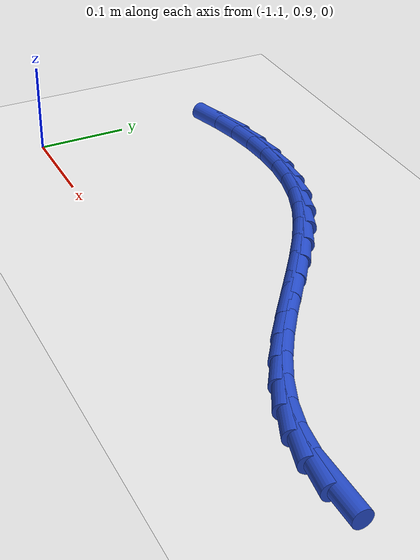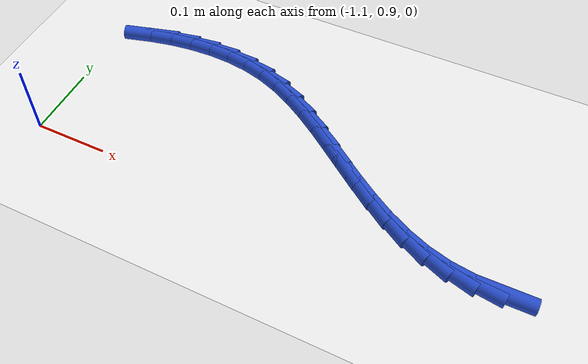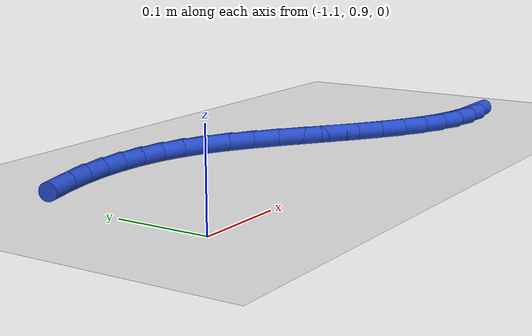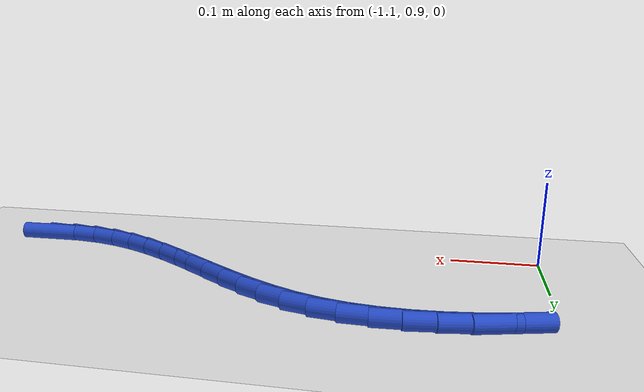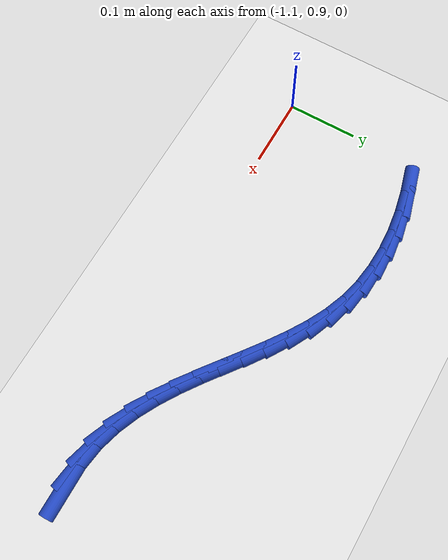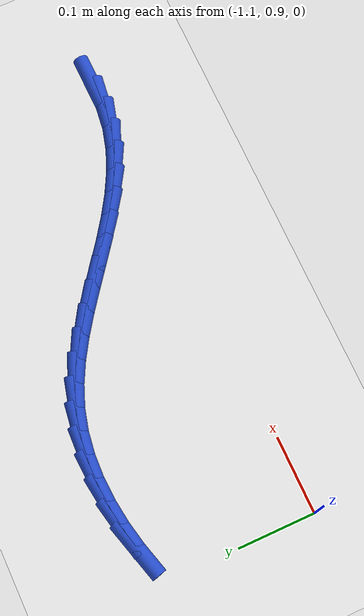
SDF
<sdf version="1.6">
 <world name="default">
  <model name="ground_plane">
   <static>1</static>
   <link name="link">
    <collision name="collision">
     <geometry><plane><normal>0 0 1</normal><size>100 100</size></plane></geometry>
     <surface><friction><ode><mu>100</mu><mu2>50</mu2></ode></friction></surface>
    </collision>
    <visual name="visual">
     <cast_shadows>0</cast_shadows>
     <geometry><plane><normal>0 0 1</normal><size>100 100</size></plane></geometry>
     <material>
      <script><uri>file://media/materials/scripts/gazebo.material</uri><name>Gazebo/WhiteGlow</name></script>
     </material>
    </visual>
   </link>
  </model>
  <model name="line">
   <link name="link_39">
    <pose>-0.48621311271935697 0.918553330267661 0.01 0 1.57 0.01132102907444683</pose>
    <collision name="collision">
     <geometry><cylinder><radius>0.01</radius><length>0.08</length></cylinder></geometry>
    </collision>
    <visual name="visual">
     <material>
      <script><name>Gazebo/Blue</name><uri>file://media/materials/scripts/gazebo.material</uri></script>
     </material>
     <geometry><cylinder><radius>0.01</radius><length>0.08</length></cylinder></geometry>
    </visual>
   </link>
   <link name="link_40">
    <pose>-0.518943744233631 0.9181827700054892 0.01 0 1.57 -0.1347020902670538</pose>
    <collision name="collision">
     <geometry><cylinder><radius>0.01</radius><length>0.08</length></cylinder></geometry>
    </collision>
    <visual name="visual">
     <material>
      <script><name>Gazebo/Blue</name><uri>file://media/materials/scripts/gazebo.material</uri></script>
     </material>
     <geometry><cylinder><radius>0.01</radius><length>0.08</length></cylinder></geometry>
    </visual>
   </link>
   <link name="link_41">
    <pose>-0.5499725529725472 0.9223878796382923 0.01 0 1.57 -0.2723756701730962</pose>
    <collision name="collision">
     <geometry><cylinder><radius>0.01</radius><length>0.08</length></cylinder></geometry>
    </collision>
    <visual name="visual">
     <material>
      <script><name>Gazebo/Blue</name><uri>file://media/materials/scripts/gazebo.material</uri></script>
     </material>
     <geometry><cylinder><radius>0.01</radius><length>0.08</length></cylinder></geometry>
    </visual>
   </link>
   <link name="link_42">
    <pose>-0.579477787620839 0.9306292067836939 0.01 0 1.57 -0.3915296969777729</pose>
    <collision name="collision">
     <geometry><cylinder><radius>0.01</radius><length>0.08</length></cylinder></geometry>
    </collision>
    <visual name="visual">
     <material>
      <script><name>Gazebo/Blue</name><uri>file://media/materials/scripts/gazebo.material</uri></script>
     </material>
     <geometry><cylinder><radius>0.01</radius><length>0.08</length></cylinder></geometry>
    </visual>
   </link>
   <link name="link_43">
    <pose>-0.6076870788718 0.9422752492210549 0.01 0 1.57 -0.4883514980227821</pose>
    <collision name="collision">
     <geometry><cylinder><radius>0.01</radius><length>0.08</length></cylinder></geometry>
    </collision>
    <visual name="visual">
     <material>
      <script><name>Gazebo/Blue</name><uri>file://media/materials/scripts/gazebo.material</uri></script>
     </material>
     <geometry><cylinder><radius>0.01</radius><length>0.08</length></cylinder></geometry>
    </visual>
   </link>
   <link name="link_44">
    <pose>-0.6348280574187213 0.9566945047297342 0.01 0 1.57 -0.5619629587354771</pose>
    <collision name="collision">
     <geometry><cylinder><radius>0.01</radius><length>0.08</length></cylinder></geometry>
    </collision>
    <visual name="visual">
     <material>
      <script><name>Gazebo/Blue</name><uri>file://media/materials/scripts/gazebo.material</uri></script>
     </material>
     <geometry><cylinder><radius>0.01</radius><length>0.08</length></cylinder></geometry>
    </visual>
   </link>
   <link name="link_45">
    <pose>-0.6611283539548961 0.9732554710890924 0.01 0 1.57 -0.6130762529158269</pose>
    <collision name="collision">
     <geometry><cylinder><radius>0.01</radius><length>0.08</length></cylinder></geometry>
    </collision>
    <visual name="visual">
     <material>
      <script><name>Gazebo/Blue</name><uri>file://media/materials/scripts/gazebo.material</uri></script>
     </material>
     <geometry><cylinder><radius>0.01</radius><length>0.08</length></cylinder></geometry>
    </visual>
   </link>
   <link name="link_46">
    <pose>-0.6868155991736159 0.9913266460784883 0.01 0 1.57 -0.6428307923180901</pose>
    <collision name="collision">
     <geometry><cylinder><radius>0.01</radius><length>0.08</length></cylinder></geometry>
    </collision>
    <visual name="visual">
     <material>
      <script><name>Gazebo/Blue</name><uri>file://media/materials/scripts/gazebo.material</uri></script>
     </material>
     <geometry><cylinder><radius>0.01</radius><length>0.08</length></cylinder></geometry>
    </visual>
   </link>
   <link name="link_47">
    <pose>-0.712117423768174 1.0102765274772831 0.01 0 1.57 -0.6520756011382788</pose>
    <collision name="collision">
     <geometry><cylinder><radius>0.01</radius><length>0.08</length></cylinder></geometry>
    </collision>
    <visual name="visual">
     <material>
      <script><name>Gazebo/Blue</name><uri>file://media/materials/scripts/gazebo.material</uri></script>
     </material>
     <geometry><cylinder><radius>0.01</radius><length>0.08</length></cylinder></geometry>
    </visual>
   </link>
   <link name="link_48">
    <pose>-0.737261458431862 1.0294736130648356 0.01 0 1.57 -0.6410186518004736</pose>
    <collision name="collision">
     <geometry><cylinder><radius>0.01</radius><length>0.08</length></cylinder></geometry>
    </collision>
    <visual name="visual">
     <material>
      <script><name>Gazebo/Blue</name><uri>file://media/materials/scripts/gazebo.material</uri></script>
     </material>
     <geometry><cylinder><radius>0.01</radius><length>0.08</length></cylinder></geometry>
    </visual>
   </link>
   <link name="link_49">
    <pose>-0.7624753338579725 1.048286400620506 0.01 0 1.57 -0.6091205736839094</pose>
    <collision name="collision">
     <geometry><cylinder><radius>0.01</radius><length>0.08</length></cylinder></geometry>
    </collision>
    <visual name="visual">
     <material>
      <script><name>Gazebo/Blue</name><uri>file://media/materials/scripts/gazebo.material</uri></script>
     </material>
     <geometry><cylinder><radius>0.01</radius><length>0.08</length></cylinder></geometry>
    </visual>
   </link>
   <link name="link_50">
    <pose>-0.7879866807397977 1.0660833879236542 0.01 0 1.57 -0.555192303690817</pose>
    <collision name="collision">
     <geometry><cylinder><radius>0.01</radius><length>0.08</length></cylinder></geometry>
    </collision>
    <visual name="visual">
     <material>
      <script><name>Gazebo/Blue</name><uri>file://media/materials/scripts/gazebo.material</uri></script>
     </material>
     <geometry><cylinder><radius>0.01</radius><length>0.08</length></cylinder></geometry>
    </visual>
   </link>
   <link name="link_51">
    <pose>-0.81402312977063 1.0822330727536398 0.01 0 1.57 -0.47776956233142653</pose>
    <collision name="collision">
     <geometry><cylinder><radius>0.01</radius><length>0.08</length></cylinder></geometry>
    </collision>
    <visual name="visual">
     <material>
      <script><name>Gazebo/Blue</name><uri>file://media/materials/scripts/gazebo.material</uri></script>
     </material>
     <geometry><cylinder><radius>0.01</radius><length>0.08</length></cylinder></geometry>
    </visual>
   </link>
   <link name="link_52">
    <pose>-0.8408123116437618 1.0961039528898229 0.01 0 1.57 -0.3759300105695635</pose>
    <collision name="collision">
     <geometry><cylinder><radius>0.01</radius><length>0.08</length></cylinder></geometry>
    </collision>
    <visual name="visual">
     <material>
      <script><name>Gazebo/Blue</name><uri>file://media/materials/scripts/gazebo.material</uri></script>
     </material>
     <geometry><cylinder><radius>0.01</radius><length>0.08</length></cylinder></geometry>
    </visual>
   </link>
   <link name="link_53">
    <pose>-0.8685818135669047 1.10706460522726 0.01 0 1.57 -0.2572716047854708</pose>
    <collision name="collision">
     <geometry><cylinder><radius>0.01</radius><length>0.08</length></cylinder></geometry>
    </collision>
    <visual name="visual">
     <material>
      <script><name>Gazebo/Blue</name><uri>file://media/materials/scripts/gazebo.material</uri></script>
     </material>
     <geometry><cylinder><radius>0.01</radius><length>0.08</length></cylinder></geometry>
    </visual>
   </link>
   <link name="link_54">
    <pose>-0.8974607726945923 1.1146627222310221 0.01 0 1.57 -0.14469863775050495</pose>
    <collision name="collision">
     <geometry><cylinder><radius>0.01</radius><length>0.08</length></cylinder></geometry>
    </collision>
    <visual name="visual">
     <material>
      <script><name>Gazebo/Blue</name><uri>file://media/materials/scripts/gazebo.material</uri></script>
     </material>
     <geometry><cylinder><radius>0.01</radius><length>0.08</length></cylinder></geometry>
    </visual>
   </link>
   <link name="link_55">
    <pose>-0.9272702626208903 1.1190064732623572 0.01 0 1.57 -0.042821099001261576</pose>
    <collision name="collision">
     <geometry><cylinder><radius>0.01</radius><length>0.08</length></cylinder></geometry>
    </collision>
    <visual name="visual">
     <material>
      <script><name>Gazebo/Blue</name><uri>file://media/materials/scripts/gazebo.material</uri></script>
     </material>
     <geometry><cylinder><radius>0.01</radius><length>0.08</length></cylinder></geometry>
    </visual>
   </link>
   <link name="link_56">
    <pose>-0.9577712637361671 1.1203133585369607 0.01 0 1.57 0.04882415933560241</pose>
    <collision name="collision">
     <geometry><cylinder><radius>0.01</radius><length>0.08</length></cylinder></geometry>
    </collision>
    <visual name="visual">
     <material>
      <script><name>Gazebo/Blue</name><uri>file://media/materials/scripts/gazebo.material</uri></script>
     </material>
     <geometry><cylinder><radius>0.01</radius><length>0.08</length></cylinder></geometry>
    </visual>
   </link>
   <link name="link_57">
    <pose>-0.9887247564307903 1.118800878270528 0.01 0 1.57 0.13125091852050708</pose>
    <collision name="collision">
     <geometry><cylinder><radius>0.01</radius><length>0.08</length></cylinder></geometry>
    </collision>
    <visual name="visual">
     <material>
      <script><name>Gazebo/Blue</name><uri>file://media/materials/scripts/gazebo.material</uri></script>
     </material>
     <geometry><cylinder><radius>0.01</radius><length>0.08</length></cylinder></geometry>
    </visual>
   </link>
   <link name="link_58">
    <pose>-1.0198917210951282 1.1146865326787536 0.01 0 1.57 0.20573129876810364</pose>
    <collision name="collision">
     <geometry><cylinder><radius>0.01</radius><length>0.08</length></cylinder></geometry>
    </collision>
    <visual name="visual">
     <material>
      <script><name>Gazebo/Blue</name><uri>file://media/materials/scripts/gazebo.material</uri></script>
     </material>
     <geometry><cylinder><radius>0.01</radius><length>0.08</length></cylinder></geometry>
    </visual>
   </link>
   <link name="link_59">
    <pose>-1.0510331381195483 1.1081878219773333 0.01 0 1.57 0.27361097702413645</pose>
    <collision name="collision">
     <geometry><cylinder><radius>0.01</radius><length>0.08</length></cylinder></geometry>
    </collision>
    <visual name="visual">
     <material>
      <script><name>Gazebo/Blue</name><uri>file://media/materials/scripts/gazebo.material</uri></script>
     </material>
     <geometry><cylinder><radius>0.01</radius><length>0.08</length></cylinder></geometry>
    </visual>
   </link>
  </model>
 </world>
</sdf>
